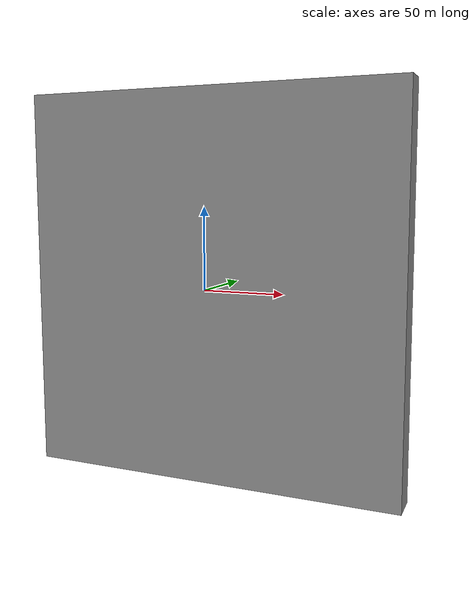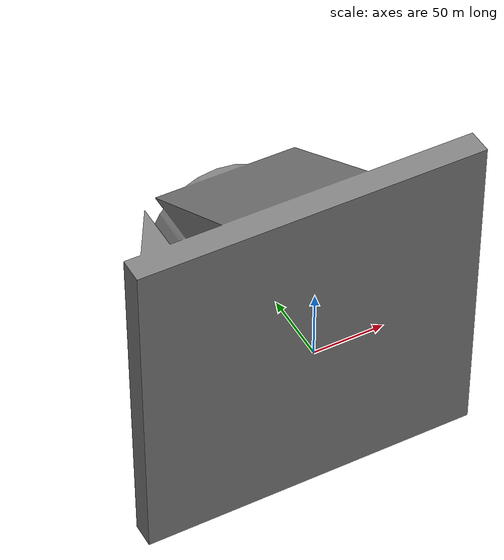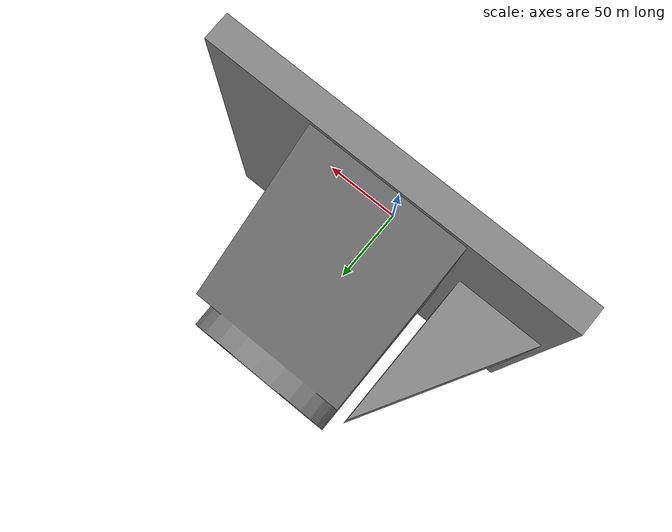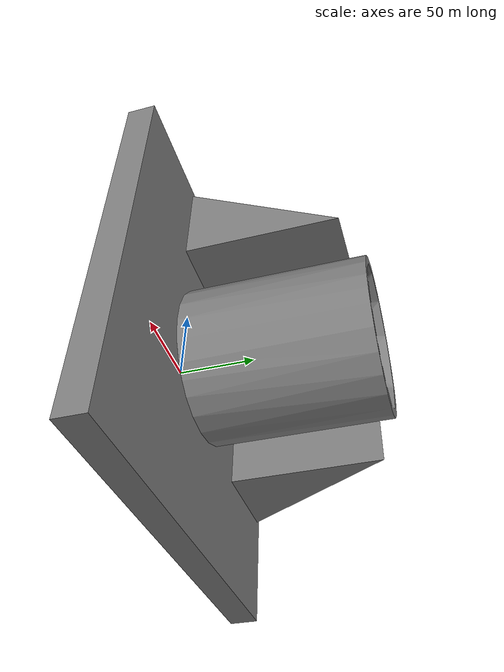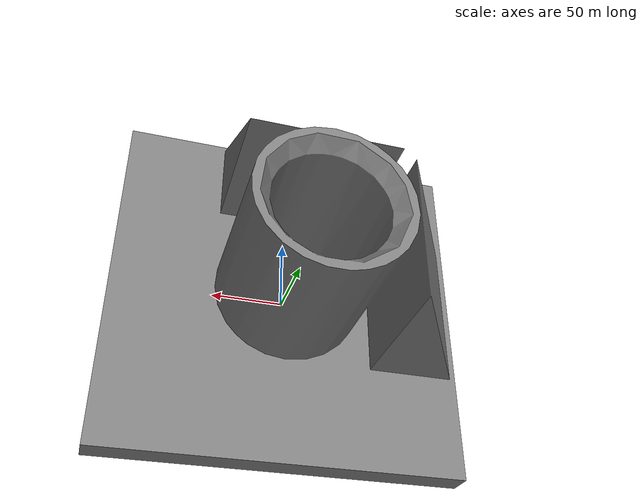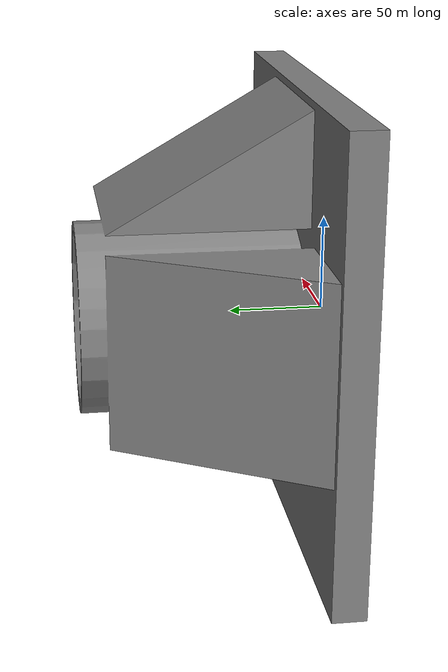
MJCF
<mujoco model="cylinder_jig">
  <default>
    <default class="visual">
      <geom group="2" type="mesh" contype="0" conaffinity="0"/>
    </default>
    <default class="collision">
      <geom group="3" type="mesh"/>
    </default>
  </default>
  <asset>
    <mesh file="cylinder_jig.obj"/>
    <mesh file="cylinder_jig_collision_0.obj"/>
    <mesh file="cylinder_jig_collision_1.obj"/>
    <mesh file="cylinder_jig_collision_2.obj"/>
    <mesh file="cylinder_jig_collision_3.obj"/>
    <mesh file="cylinder_jig_collision_4.obj"/>
    <mesh file="cylinder_jig_collision_5.obj"/>
    <mesh file="cylinder_jig_collision_6.obj"/>
    <mesh file="cylinder_jig_collision_7.obj"/>
    <mesh file="cylinder_jig_collision_8.obj"/>
    <mesh file="cylinder_jig_collision_9.obj"/>
    <mesh file="cylinder_jig_collision_10.obj"/>
    <mesh file="cylinder_jig_collision_11.obj"/>
    <mesh file="cylinder_jig_collision_12.obj"/>
    <mesh file="cylinder_jig_collision_13.obj"/>
    <mesh file="cylinder_jig_collision_14.obj"/>
    <mesh file="cylinder_jig_collision_15.obj"/>
    <mesh file="cylinder_jig_collision_16.obj"/>
    <mesh file="cylinder_jig_collision_17.obj"/>
    <mesh file="cylinder_jig_collision_18.obj"/>
    <mesh file="cylinder_jig_collision_19.obj"/>
    <mesh file="cylinder_jig_collision_20.obj"/>
    <mesh file="cylinder_jig_collision_21.obj"/>
    <mesh file="cylinder_jig_collision_22.obj"/>
  </asset>
  <worldbody>
    <body name="cylinder_jig">
      <geom mesh="cylinder_jig" class="visual"/>
      <geom mesh="cylinder_jig_collision_0" rgba="0.8900706191757303 0.9713592020957457 0.5780404029665048 1" class="collision"/>
      <geom mesh="cylinder_jig_collision_1" rgba="0.5545276775470052 0.47601813929328296 0.35862291685158143 1" class="collision"/>
      <geom mesh="cylinder_jig_collision_2" rgba="0.13197806700948966 0.6471947445059179 0.7095739691734154 1" class="collision"/>
      <geom mesh="cylinder_jig_collision_3" rgba="0.7327672247839327 0.06423444375100495 0.8043783305091261 1" class="collision"/>
      <geom mesh="cylinder_jig_collision_4" rgba="0.2021803460953837 0.8744426278588913 0.3386706933649809 1" class="collision"/>
      <geom mesh="cylinder_jig_collision_5" rgba="0.37872295514623133 0.6631442663595145 0.15468060498609038 1" class="collision"/>
      <geom mesh="cylinder_jig_collision_6" rgba="0.6679580209979851 0.3060642452647271 0.20193549290426838 1" class="collision"/>
      <geom mesh="cylinder_jig_collision_7" rgba="0.47177191206702973 0.6540724362279718 0.8740551402007518 1" class="collision"/>
      <geom mesh="cylinder_jig_collision_8" rgba="0.5899446431026785 0.6311655960711683 0.027869920889558975 1" class="collision"/>
      <geom mesh="cylinder_jig_collision_9" rgba="0.2591704408287576 0.6300630983154788 0.25980279876281087 1" class="collision"/>
      <geom mesh="cylinder_jig_collision_10" rgba="0.6408079987631246 0.4613069677941516 0.8155322240665396 1" class="collision"/>
      <geom mesh="cylinder_jig_collision_11" rgba="0.3962835623849993 0.19715408034338555 0.5191951688125966 1" class="collision"/>
      <geom mesh="cylinder_jig_collision_12" rgba="0.13721703394572005 0.26619449837891695 0.7535914591211844 1" class="collision"/>
      <geom mesh="cylinder_jig_collision_13" rgba="0.8013209941740281 0.623267868073114 0.5249186188051098 1" class="collision"/>
      <geom mesh="cylinder_jig_collision_14" rgba="0.12000656712564839 0.24490833975705906 0.6437845642161399 1" class="collision"/>
      <geom mesh="cylinder_jig_collision_15" rgba="0.6989912314637909 0.8834574961444431 0.2365143868062637 1" class="collision"/>
      <geom mesh="cylinder_jig_collision_16" rgba="0.18990052529297574 0.5675369407151897 0.7895952869553159 1" class="collision"/>
      <geom mesh="cylinder_jig_collision_17" rgba="0.40779119532224406 0.7556777891725958 0.49631518694962695 1" class="collision"/>
      <geom mesh="cylinder_jig_collision_18" rgba="0.1863716966990977 0.5551044180319202 0.6785043125909683 1" class="collision"/>
      <geom mesh="cylinder_jig_collision_19" rgba="0.048451371073279015 0.6758287766400523 0.4051556228153562 1" class="collision"/>
      <geom mesh="cylinder_jig_collision_20" rgba="0.018782822474950556 0.15708435070778426 0.515621244371689 1" class="collision"/>
      <geom mesh="cylinder_jig_collision_21" rgba="0.6460655150070409 0.42822465655561837 0.18481563322749284 1" class="collision"/>
      <geom mesh="cylinder_jig_collision_22" rgba="0.7648716961996037 0.8822818672407353 0.1549012556710525 1" class="collision"/>
    </body>
  </worldbody>
</mujoco>
